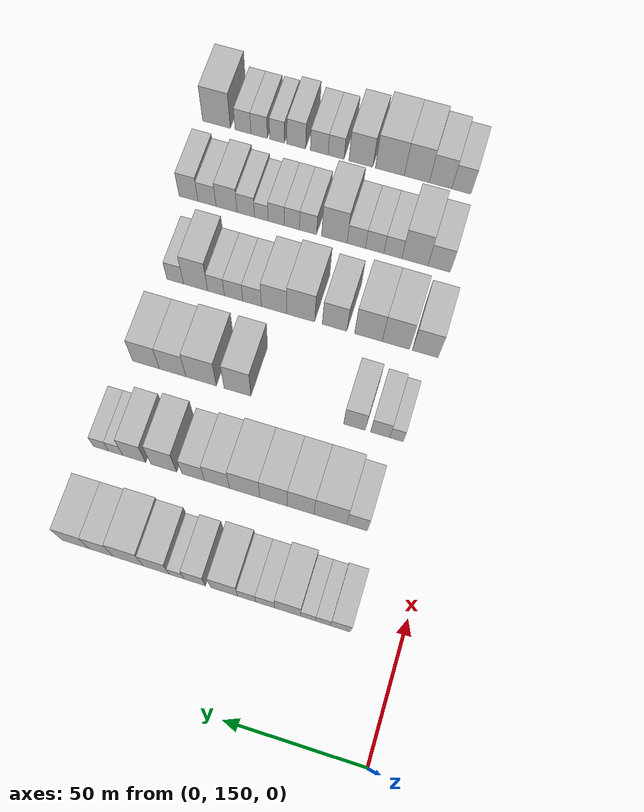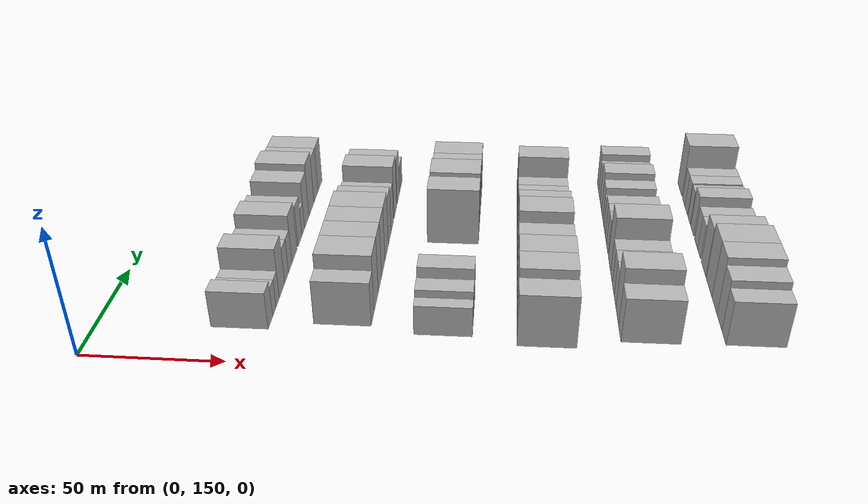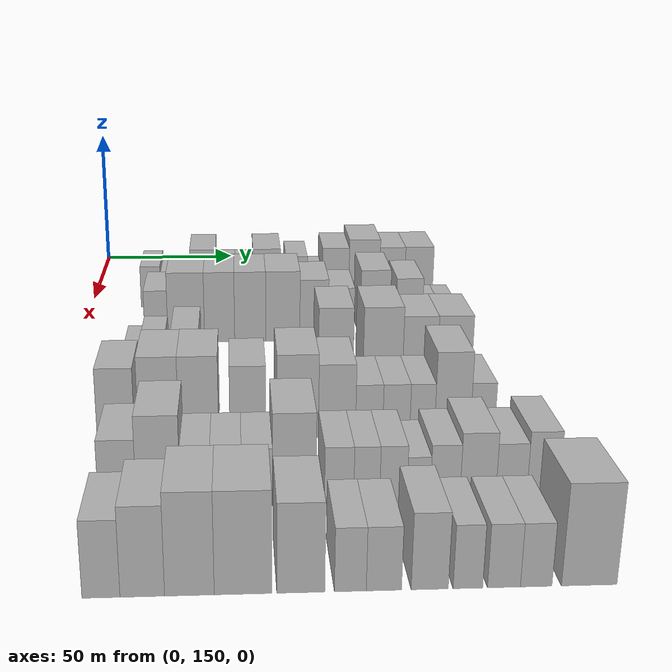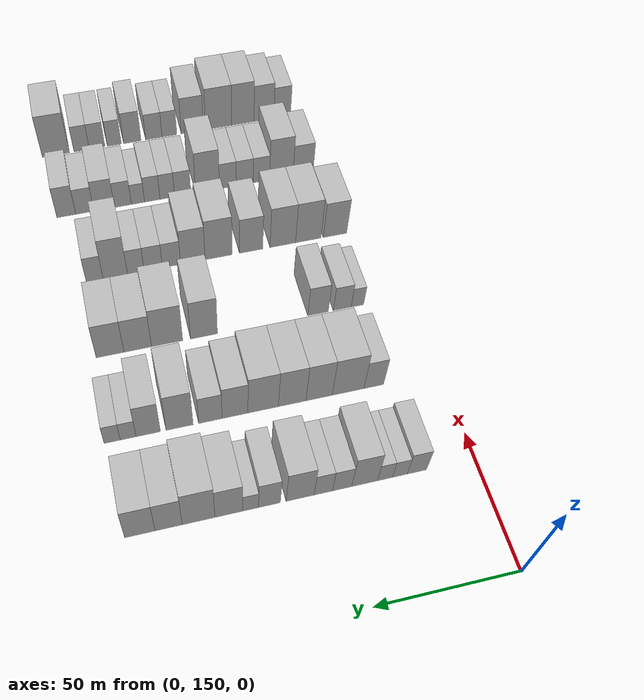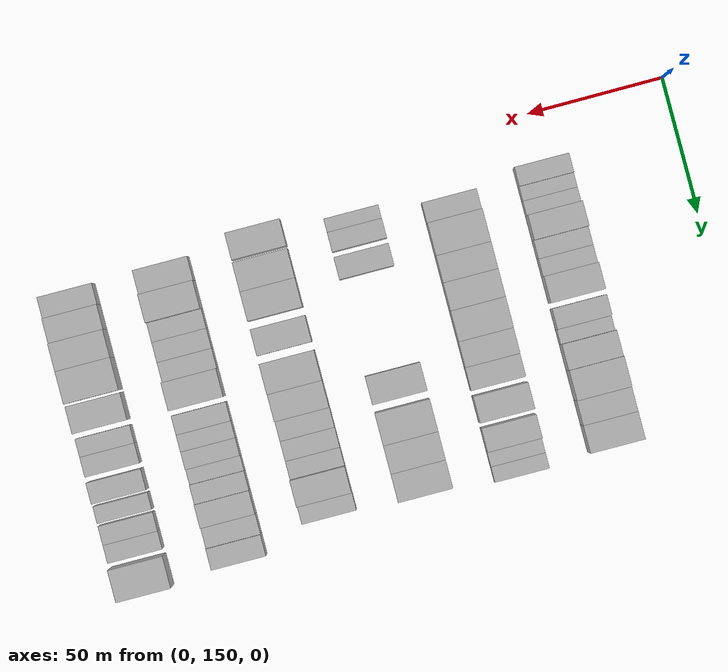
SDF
<sdf version="1.6">
 <world name="default">
  <model name="building_79">
   <static>1</static>
   <pose>50.0000 171.2696 0 0.000000 0.000000 0.000000</pose>
   <link name="link">
    <pose>0 0 7.50 0 0 0</pose>
    <collision name="collision"><geometry><box><size>20.0000 7.0186 15.0000</size></box></geometry></collision>
    <visual name="visual">
     <cast_shadows>0</cast_shadows>
     <geometry><box><size>20.0000 7.0186 15.0000</size></box></geometry>
     <material>
      <script>
       <uri>model://HANNAS_wall/materials/scripts</uri>
       <uri>model://HANNAS_wall/materials/textures</uri>
       <name>vrc/HANNAS_wall</name>
      </script>
     </material>
    </visual>
   </link>
  </model>
  <model name="building_80">
   <static>1</static>
   <pose>50.0000 177.4451 0 0.000000 0.000000 0.000000</pose>
   <link name="link">
    <pose>0 0 6.00 0 0 0</pose>
    <collision name="collision"><geometry><box><size>20.0000 5.3325 12.0000</size></box></geometry></collision>
    <visual name="visual">
     <cast_shadows>0</cast_shadows>
     <geometry><box><size>20.0000 5.3325 12.0000</size></box></geometry>
     <material>
      <script>
       <uri>model://HANNAS_wall/materials/scripts</uri>
       <uri>model://HANNAS_wall/materials/textures</uri>
       <name>vrc/HANNAS_wall</name>
      </script>
     </material>
    </visual>
   </link>
  </model>
  <model name="building_81">
   <static>1</static>
   <pose>50.0000 182.7792 0 0.000000 0.000000 0.000000</pose>
   <link name="link">
    <pose>0 0 6.00 0 0 0</pose>
    <collision name="collision"><geometry><box><size>20.0000 5.3355 12.0000</size></box></geometry></collision>
    <visual name="visual">
     <cast_shadows>0</cast_shadows>
     <geometry><box><size>20.0000 5.3355 12.0000</size></box></geometry>
     <material>
      <script>
       <uri>model://HANNAS_wall/materials/scripts</uri>
       <uri>model://HANNAS_wall/materials/textures</uri>
       <name>vrc/HANNAS_wall</name>
      </script>
     </material>
    </visual>
   </link>
  </model>
  <model name="building_82">
   <static>1</static>
   <pose>50.0000 190.0280 0 0.000000 0.000000 0.000000</pose>
   <link name="link">
    <pose>0 0 10.50 0 0 0</pose>
    <collision name="collision"><geometry><box><size>20.0000 9.1623 21.0000</size></box></geometry></collision>
    <visual name="visual">
     <cast_shadows>0</cast_shadows>
     <geometry><box><size>20.0000 9.1623 21.0000</size></box></geometry>
     <material>
      <script>
       <uri>model://HANNAS_wall/materials/scripts</uri>
       <uri>model://HANNAS_wall/materials/textures</uri>
       <name>vrc/HANNAS_wall</name>
      </script>
     </material>
    </visual>
   </link>
  </model>
  <model name="building_83">
   <static>1</static>
   <pose>50.0000 197.9950 0 0.000000 0.000000 0.000000</pose>
   <link name="link">
    <pose>0 0 7.50 0 0 0</pose>
    <collision name="collision"><geometry><box><size>20.0000 6.7716 15.0000</size></box></geometry></collision>
    <visual name="visual">
     <cast_shadows>0</cast_shadows>
     <geometry><box><size>20.0000 6.7716 15.0000</size></box></geometry>
     <material>
      <script>
       <uri>model://HANNAS_wall/materials/scripts</uri>
       <uri>model://HANNAS_wall/materials/textures</uri>
       <name>vrc/HANNAS_wall</name>
      </script>
     </material>
    </visual>
   </link>
  </model>
  <model name="building_84">
   <static>1</static>
   <pose>50.0000 204.6170 0 0.000000 0.000000 0.000000</pose>
   <link name="link">
    <pose>0 0 7.50 0 0 0</pose>
    <collision name="collision"><geometry><box><size>20.0000 6.4724 15.0000</size></box></geometry></collision>
    <visual name="visual">
     <cast_shadows>0</cast_shadows>
     <geometry><box><size>20.0000 6.4724 15.0000</size></box></geometry>
     <material>
      <script>
       <uri>model://HANNAS_wall/materials/scripts</uri>
       <uri>model://HANNAS_wall/materials/textures</uri>
       <name>vrc/HANNAS_wall</name>
      </script>
     </material>
    </visual>
   </link>
  </model>
  <model name="building_85">
   <static>1</static>
   <pose>50.0000 212.7337 0 0.000000 0.000000 0.000000</pose>
   <link name="link">
    <pose>0 0 10.50 0 0 0</pose>
    <collision name="collision"><geometry><box><size>20.0000 9.7609 21.0000</size></box></geometry></collision>
    <visual name="visual">
     <cast_shadows>0</cast_shadows>
     <geometry><box><size>20.0000 9.7609 21.0000</size></box></geometry>
     <material>
      <script>
       <uri>model://HANNAS_wall/materials/scripts</uri>
       <uri>model://HANNAS_wall/materials/textures</uri>
       <name>vrc/HANNAS_wall</name>
      </script>
     </material>
    </visual>
   </link>
  </model>
  <model name="building_86">
   <static>1</static>
   <pose>50.0000 223.4191 0 0.000000 0.000000 0.000000</pose>
   <link name="link">
    <pose>0 0 9.00 0 0 0</pose>
    <collision name="collision"><geometry><box><size>20.0000 7.6100 18.0000</size></box></geometry></collision>
    <visual name="visual">
     <cast_shadows>0</cast_shadows>
     <geometry><box><size>20.0000 7.6100 18.0000</size></box></geometry>
     <material>
      <script>
       <uri>model://HANNAS_wall/materials/scripts</uri>
       <uri>model://HANNAS_wall/materials/textures</uri>
       <name>vrc/HANNAS_wall</name>
      </script>
     </material>
    </visual>
   </link>
  </model>
  <model name="building_87">
   <static>1</static>
   <pose>50.0000 229.9350 0 0.000000 0.000000 0.000000</pose>
   <link name="link">
    <pose>0 0 6.00 0 0 0</pose>
    <collision name="collision"><geometry><box><size>20.0000 5.4217 12.0000</size></box></geometry></collision>
    <visual name="visual">
     <cast_shadows>0</cast_shadows>
     <geometry><box><size>20.0000 5.4217 12.0000</size></box></geometry>
     <material>
      <script>
       <uri>model://HANNAS_wall/materials/scripts</uri>
       <uri>model://HANNAS_wall/materials/textures</uri>
       <name>vrc/HANNAS_wall</name>
      </script>
     </material>
    </visual>
   </link>
  </model>
  <model name="building_88">
   <static>1</static>
   <pose>50.0000 237.3900 0 0.000000 0.000000 0.000000</pose>
   <link name="link">
    <pose>0 0 10.50 0 0 0</pose>
    <collision name="collision"><geometry><box><size>20.0000 9.4883 21.0000</size></box></geometry></collision>
    <visual name="visual">
     <cast_shadows>0</cast_shadows>
     <geometry><box><size>20.0000 9.4883 21.0000</size></box></geometry>
     <material>
      <script>
       <uri>model://HANNAS_wall/materials/scripts</uri>
       <uri>model://HANNAS_wall/materials/textures</uri>
       <name>vrc/HANNAS_wall</name>
      </script>
     </material>
    </visual>
   </link>
  </model>
  <model name="building_89">
   <static>1</static>
   <pose>50.0000 247.6659 0 0.000000 0.000000 0.000000</pose>
   <link name="link">
    <pose>0 0 12.00 0 0 0</pose>
    <collision name="collision"><geometry><box><size>20.0000 11.0635 24.0000</size></box></geometry></collision>
    <visual name="visual">
     <cast_shadows>0</cast_shadows>
     <geometry><box><size>20.0000 11.0635 24.0000</size></box></geometry>
     <material>
      <script>
       <uri>model://HANNAS_wall/materials/scripts</uri>
       <uri>model://HANNAS_wall/materials/textures</uri>
       <name>vrc/HANNAS_wall</name>
      </script>
     </material>
    </visual>
   </link>
  </model>
  <model name="building_90">
   <static>1</static>
   <pose>50.0000 257.7369 0 0.000000 0.000000 0.000000</pose>
   <link name="link">
    <pose>0 0 10.50 0 0 0</pose>
    <collision name="collision"><geometry><box><size>20.0000 9.0786 21.0000</size></box></geometry></collision>
    <visual name="visual">
     <cast_shadows>0</cast_shadows>
     <geometry><box><size>20.0000 9.0786 21.0000</size></box></geometry>
     <material>
      <script>
       <uri>model://HANNAS_wall/materials/scripts</uri>
       <uri>model://HANNAS_wall/materials/textures</uri>
       <name>vrc/HANNAS_wall</name>
      </script>
     </material>
    </visual>
   </link>
  </model>
  <model name="building_91">
   <static>1</static>
   <pose>50.0000 267.3488 0 0.000000 0.000000 0.000000</pose>
   <link name="link">
    <pose>0 0 10.50 0 0 0</pose>
    <collision name="collision"><geometry><box><size>20.0000 10.1451 21.0000</size></box></geometry></collision>
    <visual name="visual">
     <cast_shadows>0</cast_shadows>
     <geometry><box><size>20.0000 10.1451 21.0000</size></box></geometry>
     <material>
      <script>
       <uri>model://HANNAS_wall/materials/scripts</uri>
       <uri>model://HANNAS_wall/materials/textures</uri>
       <name>vrc/HANNAS_wall</name>
      </script>
     </material>
    </visual>
   </link>
  </model>
  <model name="building_213">
   <static>1</static>
   <pose>85.0000 175.4413 0 0.000000 0.000000 0.000000</pose>
   <link name="link">
    <pose>0 0 9.00 0 0 0</pose>
    <collision name="collision"><geometry><box><size>20.0000 7.5039 18.0000</size></box></geometry></collision>
    <visual name="visual">
     <cast_shadows>0</cast_shadows>
     <geometry><box><size>20.0000 7.5039 18.0000</size></box></geometry>
     <material>
      <script>
       <uri>model://HANNAS_wall/materials/scripts</uri>
       <uri>model://HANNAS_wall/materials/textures</uri>
       <name>vrc/HANNAS_wall</name>
      </script>
     </material>
    </visual>
   </link>
  </model>
  <model name="building_214">
   <static>1</static>
   <pose>85.0000 185.1753 0 0.000000 0.000000 0.000000</pose>
   <link name="link">
    <pose>0 0 12.00 0 0 0</pose>
    <collision name="collision"><geometry><box><size>20.0000 11.9642 24.0000</size></box></geometry></collision>
    <visual name="visual">
     <cast_shadows>0</cast_shadows>
     <geometry><box><size>20.0000 11.9642 24.0000</size></box></geometry>
     <material>
      <script>
       <uri>model://HANNAS_wall/materials/scripts</uri>
       <uri>model://HANNAS_wall/materials/textures</uri>
       <name>vrc/HANNAS_wall</name>
      </script>
     </material>
    </visual>
   </link>
  </model>
  <model name="building_215">
   <static>1</static>
   <pose>85.0000 196.0887 0 0.000000 0.000000 0.000000</pose>
   <link name="link">
    <pose>0 0 12.00 0 0 0</pose>
    <collision name="collision"><geometry><box><size>20.0000 9.8625 24.0000</size></box></geometry></collision>
    <visual name="visual">
     <cast_shadows>0</cast_shadows>
     <geometry><box><size>20.0000 9.8625 24.0000</size></box></geometry>
     <material>
      <script>
       <uri>model://HANNAS_wall/materials/scripts</uri>
       <uri>model://HANNAS_wall/materials/textures</uri>
       <name>vrc/HANNAS_wall</name>
      </script>
     </material>
    </visual>
   </link>
  </model>
  <model name="building_216">
   <static>1</static>
   <pose>85.0000 206.1308 0 0.000000 0.000000 0.000000</pose>
   <link name="link">
    <pose>0 0 12.00 0 0 0</pose>
    <collision name="collision"><geometry><box><size>20.0000 10.2217 24.0000</size></box></geometry></collision>
    <visual name="visual">
     <cast_shadows>0</cast_shadows>
     <geometry><box><size>20.0000 10.2217 24.0000</size></box></geometry>
     <material>
      <script>
       <uri>model://HANNAS_wall/materials/scripts</uri>
       <uri>model://HANNAS_wall/materials/textures</uri>
       <name>vrc/HANNAS_wall</name>
      </script>
     </material>
    </visual>
   </link>
  </model>
  <model name="building_217">
   <static>1</static>
   <pose>85.0000 216.8580 0 0.000000 0.000000 0.000000</pose>
   <link name="link">
    <pose>0 0 12.00 0 0 0</pose>
    <collision name="collision"><geometry><box><size>20.0000 11.2328 24.0000</size></box></geometry></collision>
    <visual name="visual">
     <cast_shadows>0</cast_shadows>
     <geometry><box><size>20.0000 11.2328 24.0000</size></box></geometry>
     <material>
      <script>
       <uri>model://HANNAS_wall/materials/scripts</uri>
       <uri>model://HANNAS_wall/materials/textures</uri>
       <name>vrc/HANNAS_wall</name>
      </script>
     </material>
    </visual>
   </link>
  </model>
  <model name="building_218">
   <static>1</static>
   <pose>85.0000 227.1788 0 0.000000 0.000000 0.000000</pose>
   <link name="link">
    <pose>0 0 10.50 0 0 0</pose>
    <collision name="collision"><geometry><box><size>20.0000 9.4088 21.0000</size></box></geometry></collision>
    <visual name="visual">
     <cast_shadows>0</cast_shadows>
     <geometry><box><size>20.0000 9.4088 21.0000</size></box></geometry>
     <material>
      <script>
       <uri>model://HANNAS_wall/materials/scripts</uri>
       <uri>model://HANNAS_wall/materials/textures</uri>
       <name>vrc/HANNAS_wall</name>
      </script>
     </material>
    </visual>
   </link>
  </model>
  <model name="building_219">
   <static>1</static>
   <pose>85.0000 236.1288 0 0.000000 0.000000 0.000000</pose>
   <link name="link">
    <pose>0 0 9.00 0 0 0</pose>
    <collision name="collision"><geometry><box><size>20.0000 8.4912 18.0000</size></box></geometry></collision>
    <visual name="visual">
     <cast_shadows>0</cast_shadows>
     <geometry><box><size>20.0000 8.4912 18.0000</size></box></geometry>
     <material>
      <script>
       <uri>model://HANNAS_wall/materials/scripts</uri>
       <uri>model://HANNAS_wall/materials/textures</uri>
       <name>vrc/HANNAS_wall</name>
      </script>
     </material>
    </visual>
   </link>
  </model>
  <model name="building_220">
   <static>1</static>
   <pose>85.0000 247.2409 0 0.000000 0.000000 0.000000</pose>
   <link name="link">
    <pose>0 0 12.00 0 0 0</pose>
    <collision name="collision"><geometry><box><size>20.0000 9.7332 24.0000</size></box></geometry></collision>
    <visual name="visual">
     <cast_shadows>0</cast_shadows>
     <geometry><box><size>20.0000 9.7332 24.0000</size></box></geometry>
     <material>
      <script>
       <uri>model://HANNAS_wall/materials/scripts</uri>
       <uri>model://HANNAS_wall/materials/textures</uri>
       <name>vrc/HANNAS_wall</name>
      </script>
     </material>
    </visual>
   </link>
  </model>
  <model name="building_221">
   <static>1</static>
   <pose>85.0000 258.4551 0 0.000000 0.000000 0.000000</pose>
   <link name="link">
    <pose>0 0 10.50 0 0 0</pose>
    <collision name="collision"><geometry><box><size>20.0000 8.6952 21.0000</size></box></geometry></collision>
    <visual name="visual">
     <cast_shadows>0</cast_shadows>
     <geometry><box><size>20.0000 8.6952 21.0000</size></box></geometry>
     <material>
      <script>
       <uri>model://HANNAS_wall/materials/scripts</uri>
       <uri>model://HANNAS_wall/materials/textures</uri>
       <name>vrc/HANNAS_wall</name>
      </script>
     </material>
    </visual>
   </link>
  </model>
  <model name="building_222">
   <static>1</static>
   <pose>85.0000 265.5883 0 0.000000 0.000000 0.000000</pose>
   <link name="link">
    <pose>0 0 6.00 0 0 0</pose>
    <collision name="collision"><geometry><box><size>20.0000 5.5711 12.0000</size></box></geometry></collision>
    <visual name="visual">
     <cast_shadows>0</cast_shadows>
     <geometry><box><size>20.0000 5.5711 12.0000</size></box></geometry>
     <material>
      <script>
       <uri>model://HANNAS_wall/materials/scripts</uri>
       <uri>model://HANNAS_wall/materials/textures</uri>
       <name>vrc/HANNAS_wall</name>
      </script>
     </material>
    </visual>
   </link>
  </model>
  <model name="building_223">
   <static>1</static>
   <pose>85.0000 271.2326 0 0.000000 0.000000 0.000000</pose>
   <link name="link">
    <pose>0 0 6.00 0 0 0</pose>
    <collision name="collision"><geometry><box><size>20.0000 5.7175 12.0000</size></box></geometry></collision>
    <visual name="visual">
     <cast_shadows>0</cast_shadows>
     <geometry><box><size>20.0000 5.7175 12.0000</size></box></geometry>
     <material>
      <script>
       <uri>model://HANNAS_wall/materials/scripts</uri>
       <uri>model://HANNAS_wall/materials/textures</uri>
       <name>vrc/HANNAS_wall</name>
      </script>
     </material>
    </visual>
   </link>
  </model>
  <model name="building_340">
   <static>1</static>
   <pose>120.0000 170.6771 0 0.000000 0.000000 0.000000</pose>
   <link name="link">
    <pose>0 0 6.00 0 0 0</pose>
    <collision name="collision"><geometry><box><size>20.0000 5.0451 12.0000</size></box></geometry></collision>
    <visual name="visual">
     <cast_shadows>0</cast_shadows>
     <geometry><box><size>20.0000 5.0451 12.0000</size></box></geometry>
     <material>
      <script>
       <uri>model://HANNAS_wall/materials/scripts</uri>
       <uri>model://HANNAS_wall/materials/textures</uri>
       <name>vrc/HANNAS_wall</name>
      </script>
     </material>
    </visual>
   </link>
  </model>
  <model name="building_341">
   <static>1</static>
   <pose>120.0000 176.7974 0 0.000000 0.000000 0.000000</pose>
   <link name="link">
    <pose>0 0 7.50 0 0 0</pose>
    <collision name="collision"><geometry><box><size>20.0000 7.1956 15.0000</size></box></geometry></collision>
    <visual name="visual">
     <cast_shadows>0</cast_shadows>
     <geometry><box><size>20.0000 7.1956 15.0000</size></box></geometry>
     <material>
      <script>
       <uri>model://HANNAS_wall/materials/scripts</uri>
       <uri>model://HANNAS_wall/materials/textures</uri>
       <name>vrc/HANNAS_wall</name>
      </script>
     </material>
    </visual>
   </link>
  </model>
  <model name="building_342">
   <static>1</static>
   <pose>120.0000 186.4738 0 0.000000 0.000000 0.000000</pose>
   <link name="link">
    <pose>0 0 9.00 0 0 0</pose>
    <collision name="collision"><geometry><box><size>20.0000 8.1570 18.0000</size></box></geometry></collision>
    <visual name="visual">
     <cast_shadows>0</cast_shadows>
     <geometry><box><size>20.0000 8.1570 18.0000</size></box></geometry>
     <material>
      <script>
       <uri>model://HANNAS_wall/materials/scripts</uri>
       <uri>model://HANNAS_wall/materials/textures</uri>
       <name>vrc/HANNAS_wall</name>
      </script>
     </material>
    </visual>
   </link>
  </model>
  <model name="building_343">
   <static>1</static>
   <pose>120.0000 231.0684 0 0.000000 0.000000 0.000000</pose>
   <link name="link">
    <pose>0 0 12.00 0 0 0</pose>
    <collision name="collision"><geometry><box><size>20.0000 10.3441 24.0000</size></box></geometry></collision>
    <visual name="visual">
     <cast_shadows>0</cast_shadows>
     <geometry><box><size>20.0000 10.3441 24.0000</size></box></geometry>
     <material>
      <script>
       <uri>model://HANNAS_wall/materials/scripts</uri>
       <uri>model://HANNAS_wall/materials/textures</uri>
       <name>vrc/HANNAS_wall</name>
      </script>
     </material>
    </visual>
   </link>
  </model>
  <model name="building_344">
   <static>1</static>
   <pose>120.0000 245.1687 0 0.000000 0.000000 0.000000</pose>
   <link name="link">
    <pose>0 0 12.00 0 0 0</pose>
    <collision name="collision"><geometry><box><size>20.0000 11.8566 24.0000</size></box></geometry></collision>
    <visual name="visual">
     <cast_shadows>0</cast_shadows>
     <geometry><box><size>20.0000 11.8566 24.0000</size></box></geometry>
     <material>
      <script>
       <uri>model://HANNAS_wall/materials/scripts</uri>
       <uri>model://HANNAS_wall/materials/textures</uri>
       <name>vrc/HANNAS_wall</name>
      </script>
     </material>
    </visual>
   </link>
  </model>
  <model name="building_345">
   <static>1</static>
   <pose>120.0000 256.3021 0 0.000000 0.000000 0.000000</pose>
   <link name="link">
    <pose>0 0 10.50 0 0 0</pose>
    <collision name="collision"><geometry><box><size>20.0000 10.4101 21.0000</size></box></geometry></collision>
    <visual name="visual">
     <cast_shadows>0</cast_shadows>
     <geometry><box><size>20.0000 10.4101 21.0000</size></box></geometry>
     <material>
      <script>
       <uri>model://HANNAS_wall/materials/scripts</uri>
       <uri>model://HANNAS_wall/materials/textures</uri>
       <name>vrc/HANNAS_wall</name>
      </script>
     </material>
    </visual>
   </link>
  </model>
  <model name="building_346">
   <static>1</static>
   <pose>120.0000 266.7120 0 0.000000 0.000000 0.000000</pose>
   <link name="link">
    <pose>0 0 10.50 0 0 0</pose>
    <collision name="collision"><geometry><box><size>20.0000 10.4098 21.0000</size></box></geometry></collision>
    <visual name="visual">
     <cast_shadows>0</cast_shadows>
     <geometry><box><size>20.0000 10.4098 21.0000</size></box></geometry>
     <material>
      <script>
       <uri>model://HANNAS_wall/materials/scripts</uri>
       <uri>model://HANNAS_wall/materials/textures</uri>
       <name>vrc/HANNAS_wall</name>
      </script>
     </material>
    </visual>
   </link>
  </model>
  <model name="building_462">
   <static>1</static>
   <pose>155.0000 169.2779 0 0.000000 0.000000 0.000000</pose>
   <link name="link">
    <pose>0 0 10.50 0 0 0</pose>
    <collision name="collision"><geometry><box><size>20.0000 9.8955 21.0000</size></box></geometry></collision>
    <visual name="visual">
     <cast_shadows>0</cast_shadows>
     <geometry><box><size>20.0000 9.8955 21.0000</size></box></geometry>
     <material>
      <script>
       <uri>model://HANNAS_wall/materials/scripts</uri>
       <uri>model://HANNAS_wall/materials/textures</uri>
       <name>vrc/HANNAS_wall</name>
      </script>
     </material>
    </visual>
   </link>
  </model>
  <model name="building_463">
   <static>1</static>
   <pose>155.0000 180.5474 0 0.000000 0.000000 0.000000</pose>
   <link name="link">
    <pose>0 0 12.00 0 0 0</pose>
    <collision name="collision"><geometry><box><size>20.0000 10.6436 24.0000</size></box></geometry></collision>
    <visual name="visual">
     <cast_shadows>0</cast_shadows>
     <geometry><box><size>20.0000 10.6436 24.0000</size></box></geometry>
     <material>
      <script>
       <uri>model://HANNAS_wall/materials/scripts</uri>
       <uri>model://HANNAS_wall/materials/textures</uri>
       <name>vrc/HANNAS_wall</name>
      </script>
     </material>
    </visual>
   </link>
  </model>
  <model name="building_464">
   <static>1</static>
   <pose>155.0000 191.2137 0 0.000000 0.000000 0.000000</pose>
   <link name="link">
    <pose>0 0 12.00 0 0 0</pose>
    <collision name="collision"><geometry><box><size>20.0000 10.6891 24.0000</size></box></geometry></collision>
    <visual name="visual">
     <cast_shadows>0</cast_shadows>
     <geometry><box><size>20.0000 10.6891 24.0000</size></box></geometry>
     <material>
      <script>
       <uri>model://HANNAS_wall/materials/scripts</uri>
       <uri>model://HANNAS_wall/materials/textures</uri>
       <name>vrc/HANNAS_wall</name>
      </script>
     </material>
    </visual>
   </link>
  </model>
  <model name="building_465">
   <static>1</static>
   <pose>155.0000 204.3678 0 0.000000 0.000000 0.000000</pose>
   <link name="link">
    <pose>0 0 10.50 0 0 0</pose>
    <collision name="collision"><geometry><box><size>20.0000 9.6191 21.0000</size></box></geometry></collision>
    <visual name="visual">
     <cast_shadows>0</cast_shadows>
     <geometry><box><size>20.0000 9.6191 21.0000</size></box></geometry>
     <material>
      <script>
       <uri>model://HANNAS_wall/materials/scripts</uri>
       <uri>model://HANNAS_wall/materials/textures</uri>
       <name>vrc/HANNAS_wall</name>
      </script>
     </material>
    </visual>
   </link>
  </model>
  <model name="building_466">
   <static>1</static>
   <pose>155.0000 217.7143 0 0.000000 0.000000 0.000000</pose>
   <link name="link">
    <pose>0 0 12.00 0 0 0</pose>
    <collision name="collision"><geometry><box><size>20.0000 11.0740 24.0000</size></box></geometry></collision>
    <visual name="visual">
     <cast_shadows>0</cast_shadows>
     <geometry><box><size>20.0000 11.0740 24.0000</size></box></geometry>
     <material>
      <script>
       <uri>model://HANNAS_wall/materials/scripts</uri>
       <uri>model://HANNAS_wall/materials/textures</uri>
       <name>vrc/HANNAS_wall</name>
      </script>
     </material>
    </visual>
   </link>
  </model>
  <model name="building_467">
   <static>1</static>
   <pose>155.0000 228.2185 0 0.000000 0.000000 0.000000</pose>
   <link name="link">
    <pose>0 0 10.50 0 0 0</pose>
    <collision name="collision"><geometry><box><size>20.0000 9.9343 21.0000</size></box></geometry></collision>
    <visual name="visual">
     <cast_shadows>0</cast_shadows>
     <geometry><box><size>20.0000 9.9343 21.0000</size></box></geometry>
     <material>
      <script>
       <uri>model://HANNAS_wall/materials/scripts</uri>
       <uri>model://HANNAS_wall/materials/textures</uri>
       <name>vrc/HANNAS_wall</name>
      </script>
     </material>
    </visual>
   </link>
  </model>
  <model name="building_468">
   <static>1</static>
   <pose>155.0000 236.8538 0 0.000000 0.000000 0.000000</pose>
   <link name="link">
    <pose>0 0 7.50 0 0 0</pose>
    <collision name="collision"><geometry><box><size>20.0000 7.3363 15.0000</size></box></geometry></collision>
    <visual name="visual">
     <cast_shadows>0</cast_shadows>
     <geometry><box><size>20.0000 7.3363 15.0000</size></box></geometry>
     <material>
      <script>
       <uri>model://HANNAS_wall/materials/scripts</uri>
       <uri>model://HANNAS_wall/materials/textures</uri>
       <name>vrc/HANNAS_wall</name>
      </script>
     </material>
    </visual>
   </link>
  </model>
  <model name="building_469">
   <static>1</static>
   <pose>155.0000 244.1714 0 0.000000 0.000000 0.000000</pose>
   <link name="link">
    <pose>0 0 7.50 0 0 0</pose>
    <collision name="collision"><geometry><box><size>20.0000 7.2989 15.0000</size></box></geometry></collision>
    <visual name="visual">
     <cast_shadows>0</cast_shadows>
     <geometry><box><size>20.0000 7.2989 15.0000</size></box></geometry>
     <material>
      <script>
       <uri>model://HANNAS_wall/materials/scripts</uri>
       <uri>model://HANNAS_wall/materials/textures</uri>
       <name>vrc/HANNAS_wall</name>
      </script>
     </material>
    </visual>
   </link>
  </model>
  <model name="building_470">
   <static>1</static>
   <pose>155.0000 251.1694 0 0.000000 0.000000 0.000000</pose>
   <link name="link">
    <pose>0 0 7.50 0 0 0</pose>
    <collision name="collision"><geometry><box><size>20.0000 6.6970 15.0000</size></box></geometry></collision>
    <visual name="visual">
     <cast_shadows>0</cast_shadows>
     <geometry><box><size>20.0000 6.6970 15.0000</size></box></geometry>
     <material>
      <script>
       <uri>model://HANNAS_wall/materials/scripts</uri>
       <uri>model://HANNAS_wall/materials/textures</uri>
       <name>vrc/HANNAS_wall</name>
      </script>
     </material>
    </visual>
   </link>
  </model>
  <model name="building_471">
   <static>1</static>
   <pose>155.0000 259.3707 0 0.000000 0.000000 0.000000</pose>
   <link name="link">
    <pose>0 0 12.00 0 0 0</pose>
    <collision name="collision"><geometry><box><size>20.0000 9.7055 24.0000</size></box></geometry></collision>
    <visual name="visual">
     <cast_shadows>0</cast_shadows>
     <geometry><box><size>20.0000 9.7055 24.0000</size></box></geometry>
     <material>
      <script>
       <uri>model://HANNAS_wall/materials/scripts</uri>
       <uri>model://HANNAS_wall/materials/textures</uri>
       <name>vrc/HANNAS_wall</name>
      </script>
     </material>
    </visual>
   </link>
  </model>
  <model name="building_472">
   <static>1</static>
   <pose>155.0000 267.5530 0 0.000000 0.000000 0.000000</pose>
   <link name="link">
    <pose>0 0 7.50 0 0 0</pose>
    <collision name="collision"><geometry><box><size>20.0000 6.6593 15.0000</size></box></geometry></collision>
    <visual name="visual">
     <cast_shadows>0</cast_shadows>
     <geometry><box><size>20.0000 6.6593 15.0000</size></box></geometry>
     <material>
      <script>
       <uri>model://HANNAS_wall/materials/scripts</uri>
       <uri>model://HANNAS_wall/materials/textures</uri>
       <name>vrc/HANNAS_wall</name>
      </script>
     </material>
    </visual>
   </link>
  </model>
  <model name="building_589">
   <static>1</static>
   <pose>190.0000 173.1218 0 0.000000 0.000000 0.000000</pose>
   <link name="link">
    <pose>0 0 9.00 0 0 0</pose>
    <collision name="collision"><geometry><box><size>20.0000 8.8609 18.0000</size></box></geometry></collision>
    <visual name="visual">
     <cast_shadows>0</cast_shadows>
     <geometry><box><size>20.0000 8.8609 18.0000</size></box></geometry>
     <material>
      <script>
       <uri>model://HANNAS_wall/materials/scripts</uri>
       <uri>model://HANNAS_wall/materials/textures</uri>
       <name>vrc/HANNAS_wall</name>
      </script>
     </material>
    </visual>
   </link>
  </model>
  <model name="building_590">
   <static>1</static>
   <pose>190.0000 182.7255 0 0.000000 0.000000 0.000000</pose>
   <link name="link">
    <pose>0 0 12.00 0 0 0</pose>
    <collision name="collision"><geometry><box><size>20.0000 10.3466 24.0000</size></box></geometry></collision>
    <visual name="visual">
     <cast_shadows>0</cast_shadows>
     <geometry><box><size>20.0000 10.3466 24.0000</size></box></geometry>
     <material>
      <script>
       <uri>model://HANNAS_wall/materials/scripts</uri>
       <uri>model://HANNAS_wall/materials/textures</uri>
       <name>vrc/HANNAS_wall</name>
      </script>
     </material>
    </visual>
   </link>
  </model>
  <model name="building_591">
   <static>1</static>
   <pose>190.0000 191.4546 0 0.000000 0.000000 0.000000</pose>
   <link name="link">
    <pose>0 0 7.50 0 0 0</pose>
    <collision name="collision"><geometry><box><size>20.0000 7.1115 15.0000</size></box></geometry></collision>
    <visual name="visual">
     <cast_shadows>0</cast_shadows>
     <geometry><box><size>20.0000 7.1115 15.0000</size></box></geometry>
     <material>
      <script>
       <uri>model://HANNAS_wall/materials/scripts</uri>
       <uri>model://HANNAS_wall/materials/textures</uri>
       <name>vrc/HANNAS_wall</name>
      </script>
     </material>
    </visual>
   </link>
  </model>
  <model name="building_592">
   <static>1</static>
   <pose>190.0000 198.6875 0 0.000000 0.000000 0.000000</pose>
   <link name="link">
    <pose>0 0 7.50 0 0 0</pose>
    <collision name="collision"><geometry><box><size>20.0000 7.3545 15.0000</size></box></geometry></collision>
    <visual name="visual">
     <cast_shadows>0</cast_shadows>
     <geometry><box><size>20.0000 7.3545 15.0000</size></box></geometry>
     <material>
      <script>
       <uri>model://HANNAS_wall/materials/scripts</uri>
       <uri>model://HANNAS_wall/materials/textures</uri>
       <name>vrc/HANNAS_wall</name>
      </script>
     </material>
    </visual>
   </link>
  </model>
  <model name="building_593">
   <static>1</static>
   <pose>190.0000 206.0282 0 0.000000 0.000000 0.000000</pose>
   <link name="link">
    <pose>0 0 7.50 0 0 0</pose>
    <collision name="collision"><geometry><box><size>20.0000 7.3270 15.0000</size></box></geometry></collision>
    <visual name="visual">
     <cast_shadows>0</cast_shadows>
     <geometry><box><size>20.0000 7.3270 15.0000</size></box></geometry>
     <material>
      <script>
       <uri>model://HANNAS_wall/materials/scripts</uri>
       <uri>model://HANNAS_wall/materials/textures</uri>
       <name>vrc/HANNAS_wall</name>
      </script>
     </material>
    </visual>
   </link>
  </model>
  <model name="building_594">
   <static>1</static>
   <pose>190.0000 214.8346 0 0.000000 0.000000 0.000000</pose>
   <link name="link">
    <pose>0 0 12.00 0 0 0</pose>
    <collision name="collision"><geometry><box><size>20.0000 10.2857 24.0000</size></box></geometry></collision>
    <visual name="visual">
     <cast_shadows>0</cast_shadows>
     <geometry><box><size>20.0000 10.2857 24.0000</size></box></geometry>
     <material>
      <script>
       <uri>model://HANNAS_wall/materials/scripts</uri>
       <uri>model://HANNAS_wall/materials/textures</uri>
       <name>vrc/HANNAS_wall</name>
      </script>
     </material>
    </visual>
   </link>
  </model>
  <model name="building_595">
   <static>1</static>
   <pose>190.0000 225.4565 0 0.000000 0.000000 0.000000</pose>
   <link name="link">
    <pose>0 0 7.50 0 0 0</pose>
    <collision name="collision"><geometry><box><size>20.0000 6.9581 15.0000</size></box></geometry></collision>
    <visual name="visual">
     <cast_shadows>0</cast_shadows>
     <geometry><box><size>20.0000 6.9581 15.0000</size></box></geometry>
     <material>
      <script>
       <uri>model://HANNAS_wall/materials/scripts</uri>
       <uri>model://HANNAS_wall/materials/textures</uri>
       <name>vrc/HANNAS_wall</name>
      </script>
     </material>
    </visual>
   </link>
  </model>
  <model name="building_596">
   <static>1</static>
   <pose>190.0000 232.0343 0 0.000000 0.000000 0.000000</pose>
   <link name="link">
    <pose>0 0 7.50 0 0 0</pose>
    <collision name="collision"><geometry><box><size>20.0000 6.1973 15.0000</size></box></geometry></collision>
    <visual name="visual">
     <cast_shadows>0</cast_shadows>
     <geometry><box><size>20.0000 6.1973 15.0000</size></box></geometry>
     <material>
      <script>
       <uri>model://HANNAS_wall/materials/scripts</uri>
       <uri>model://HANNAS_wall/materials/textures</uri>
       <name>vrc/HANNAS_wall</name>
      </script>
     </material>
    </visual>
   </link>
  </model>
  <model name="building_597">
   <static>1</static>
   <pose>190.0000 238.3915 0 0.000000 0.000000 0.000000</pose>
   <link name="link">
    <pose>0 0 7.50 0 0 0</pose>
    <collision name="collision"><geometry><box><size>20.0000 6.5172 15.0000</size></box></geometry></collision>
    <visual name="visual">
     <cast_shadows>0</cast_shadows>
     <geometry><box><size>20.0000 6.5172 15.0000</size></box></geometry>
     <material>
      <script>
       <uri>model://HANNAS_wall/materials/scripts</uri>
       <uri>model://HANNAS_wall/materials/textures</uri>
       <name>vrc/HANNAS_wall</name>
      </script>
     </material>
    </visual>
   </link>
  </model>
  <model name="building_598">
   <static>1</static>
   <pose>190.0000 244.4418 0 0.000000 0.000000 0.000000</pose>
   <link name="link">
    <pose>0 0 6.00 0 0 0</pose>
    <collision name="collision"><geometry><box><size>20.0000 5.5833 12.0000</size></box></geometry></collision>
    <visual name="visual">
     <cast_shadows>0</cast_shadows>
     <geometry><box><size>20.0000 5.5833 12.0000</size></box></geometry>
     <material>
      <script>
       <uri>model://HANNAS_wall/materials/scripts</uri>
       <uri>model://HANNAS_wall/materials/textures</uri>
       <name>vrc/HANNAS_wall</name>
      </script>
     </material>
    </visual>
   </link>
  </model>
  <model name="building_599">
   <static>1</static>
   <pose>190.0000 250.8004 0 0.000000 0.000000 0.000000</pose>
   <link name="link">
    <pose>0 0 7.50 0 0 0</pose>
    <collision name="collision"><geometry><box><size>20.0000 7.1339 15.0000</size></box></geometry></collision>
    <visual name="visual">
     <cast_shadows>0</cast_shadows>
     <geometry><box><size>20.0000 7.1339 15.0000</size></box></geometry>
     <material>
      <script>
       <uri>model://HANNAS_wall/materials/scripts</uri>
       <uri>model://HANNAS_wall/materials/textures</uri>
       <name>vrc/HANNAS_wall</name>
      </script>
     </material>
    </visual>
   </link>
  </model>
  <model name="building_600">
   <static>1</static>
   <pose>190.0000 258.6695 0 0.000000 0.000000 0.000000</pose>
   <link name="link">
    <pose>0 0 9.00 0 0 0</pose>
    <collision name="collision"><geometry><box><size>20.0000 8.6044 18.0000</size></box></geometry></collision>
    <visual name="visual">
     <cast_shadows>0</cast_shadows>
     <geometry><box><size>20.0000 8.6044 18.0000</size></box></geometry>
     <material>
      <script>
       <uri>model://HANNAS_wall/materials/scripts</uri>
       <uri>model://HANNAS_wall/materials/textures</uri>
       <name>vrc/HANNAS_wall</name>
      </script>
     </material>
    </visual>
   </link>
  </model>
  <model name="building_601">
   <static>1</static>
   <pose>190.0000 266.7140 0 0.000000 0.000000 0.000000</pose>
   <link name="link">
    <pose>0 0 7.50 0 0 0</pose>
    <collision name="collision"><geometry><box><size>20.0000 7.4845 15.0000</size></box></geometry></collision>
    <visual name="visual">
     <cast_shadows>0</cast_shadows>
     <geometry><box><size>20.0000 7.4845 15.0000</size></box></geometry>
     <material>
      <script>
       <uri>model://HANNAS_wall/materials/scripts</uri>
       <uri>model://HANNAS_wall/materials/textures</uri>
       <name>vrc/HANNAS_wall</name>
      </script>
     </material>
    </visual>
   </link>
  </model>
  <model name="building_602">
   <static>1</static>
   <pose>190.0000 274.3591 0 0.000000 0.000000 0.000000</pose>
   <link name="link">
    <pose>0 0 9.00 0 0 0</pose>
    <collision name="collision"><geometry><box><size>20.0000 7.8057 18.0000</size></box></geometry></collision>
    <visual name="visual">
     <cast_shadows>0</cast_shadows>
     <geometry><box><size>20.0000 7.8057 18.0000</size></box></geometry>
     <material>
      <script>
       <uri>model://HANNAS_wall/materials/scripts</uri>
       <uri>model://HANNAS_wall/materials/textures</uri>
       <name>vrc/HANNAS_wall</name>
      </script>
     </material>
    </visual>
   </link>
  </model>
  <model name="building_705">
   <static>1</static>
   <pose>225.0000 173.1902 0 0.000000 0.000000 0.000000</pose>
   <link name="link">
    <pose>0 0 9.00 0 0 0</pose>
    <collision name="collision"><geometry><box><size>20.0000 7.7608 18.0000</size></box></geometry></collision>
    <visual name="visual">
     <cast_shadows>0</cast_shadows>
     <geometry><box><size>20.0000 7.7608 18.0000</size></box></geometry>
     <material>
      <script>
       <uri>model://HANNAS_wall/materials/scripts</uri>
       <uri>model://HANNAS_wall/materials/textures</uri>
       <name>vrc/HANNAS_wall</name>
      </script>
     </material>
    </visual>
   </link>
  </model>
  <model name="building_706">
   <static>1</static>
   <pose>225.0000 181.6315 0 0.000000 0.000000 0.000000</pose>
   <link name="link">
    <pose>0 0 10.50 0 0 0</pose>
    <collision name="collision"><geometry><box><size>20.0000 9.1217 21.0000</size></box></geometry></collision>
    <visual name="visual">
     <cast_shadows>0</cast_shadows>
     <geometry><box><size>20.0000 9.1217 21.0000</size></box></geometry>
     <material>
      <script>
       <uri>model://HANNAS_wall/materials/scripts</uri>
       <uri>model://HANNAS_wall/materials/textures</uri>
       <name>vrc/HANNAS_wall</name>
      </script>
     </material>
    </visual>
   </link>
  </model>
  <model name="building_707">
   <static>1</static>
   <pose>225.0000 191.2891 0 0.000000 0.000000 0.000000</pose>
   <link name="link">
    <pose>0 0 12.00 0 0 0</pose>
    <collision name="collision"><geometry><box><size>20.0000 10.1936 24.0000</size></box></geometry></collision>
    <visual name="visual">
     <cast_shadows>0</cast_shadows>
     <geometry><box><size>20.0000 10.1936 24.0000</size></box></geometry>
     <material>
      <script>
       <uri>model://HANNAS_wall/materials/scripts</uri>
       <uri>model://HANNAS_wall/materials/textures</uri>
       <name>vrc/HANNAS_wall</name>
      </script>
     </material>
    </visual>
   </link>
  </model>
  <model name="building_708">
   <static>1</static>
   <pose>225.0000 202.3316 0 0.000000 0.000000 0.000000</pose>
   <link name="link">
    <pose>0 0 12.00 0 0 0</pose>
    <collision name="collision"><geometry><box><size>20.0000 11.8913 24.0000</size></box></geometry></collision>
    <visual name="visual">
     <cast_shadows>0</cast_shadows>
     <geometry><box><size>20.0000 11.8913 24.0000</size></box></geometry>
     <material>
      <script>
       <uri>model://HANNAS_wall/materials/scripts</uri>
       <uri>model://HANNAS_wall/materials/textures</uri>
       <name>vrc/HANNAS_wall</name>
      </script>
     </material>
    </visual>
   </link>
  </model>
  <model name="building_709">
   <static>1</static>
   <pose>225.0000 214.2407 0 0.000000 0.000000 0.000000</pose>
   <link name="link">
    <pose>0 0 10.50 0 0 0</pose>
    <collision name="collision"><geometry><box><size>20.0000 9.9269 21.0000</size></box></geometry></collision>
    <visual name="visual">
     <cast_shadows>0</cast_shadows>
     <geometry><box><size>20.0000 9.9269 21.0000</size></box></geometry>
     <material>
      <script>
       <uri>model://HANNAS_wall/materials/scripts</uri>
       <uri>model://HANNAS_wall/materials/textures</uri>
       <name>vrc/HANNAS_wall</name>
      </script>
     </material>
    </visual>
   </link>
  </model>
  <model name="building_710">
   <static>1</static>
   <pose>225.0000 224.5101 0 0.000000 0.000000 0.000000</pose>
   <link name="link">
    <pose>0 0 7.50 0 0 0</pose>
    <collision name="collision"><geometry><box><size>20.0000 6.6119 15.0000</size></box></geometry></collision>
    <visual name="visual">
     <cast_shadows>0</cast_shadows>
     <geometry><box><size>20.0000 6.6119 15.0000</size></box></geometry>
     <material>
      <script>
       <uri>model://HANNAS_wall/materials/scripts</uri>
       <uri>model://HANNAS_wall/materials/textures</uri>
       <name>vrc/HANNAS_wall</name>
      </script>
     </material>
    </visual>
   </link>
  </model>
  <model name="building_711">
   <static>1</static>
   <pose>225.0000 231.4916 0 0.000000 0.000000 0.000000</pose>
   <link name="link">
    <pose>0 0 7.50 0 0 0</pose>
    <collision name="collision"><geometry><box><size>20.0000 7.3511 15.0000</size></box></geometry></collision>
    <visual name="visual">
     <cast_shadows>0</cast_shadows>
     <geometry><box><size>20.0000 7.3511 15.0000</size></box></geometry>
     <material>
      <script>
       <uri>model://HANNAS_wall/materials/scripts</uri>
       <uri>model://HANNAS_wall/materials/textures</uri>
       <name>vrc/HANNAS_wall</name>
      </script>
     </material>
    </visual>
   </link>
  </model>
  <model name="building_712">
   <static>1</static>
   <pose>225.0000 241.0540 0 0.000000 0.000000 0.000000</pose>
   <link name="link">
    <pose>0 0 9.00 0 0 0</pose>
    <collision name="collision"><geometry><box><size>20.0000 7.7737 18.0000</size></box></geometry></collision>
    <visual name="visual">
     <cast_shadows>0</cast_shadows>
     <geometry><box><size>20.0000 7.7737 18.0000</size></box></geometry>
     <material>
      <script>
       <uri>model://HANNAS_wall/materials/scripts</uri>
       <uri>model://HANNAS_wall/materials/textures</uri>
       <name>vrc/HANNAS_wall</name>
      </script>
     </material>
    </visual>
   </link>
  </model>
  <model name="building_713">
   <static>1</static>
   <pose>225.0000 249.0449 0 0.000000 0.000000 0.000000</pose>
   <link name="link">
    <pose>0 0 7.50 0 0 0</pose>
    <collision name="collision"><geometry><box><size>20.0000 6.2081 15.0000</size></box></geometry></collision>
    <visual name="visual">
     <cast_shadows>0</cast_shadows>
     <geometry><box><size>20.0000 6.2081 15.0000</size></box></geometry>
     <material>
      <script>
       <uri>model://HANNAS_wall/materials/scripts</uri>
       <uri>model://HANNAS_wall/materials/textures</uri>
       <name>vrc/HANNAS_wall</name>
      </script>
     </material>
    </visual>
   </link>
  </model>
  <model name="building_714">
   <static>1</static>
   <pose>225.0000 256.6054 0 0.000000 0.000000 0.000000</pose>
   <link name="link">
    <pose>0 0 7.50 0 0 0</pose>
    <collision name="collision"><geometry><box><size>20.0000 6.9130 15.0000</size></box></geometry></collision>
    <visual name="visual">
     <cast_shadows>0</cast_shadows>
     <geometry><box><size>20.0000 6.9130 15.0000</size></box></geometry>
     <material>
      <script>
       <uri>model://HANNAS_wall/materials/scripts</uri>
       <uri>model://HANNAS_wall/materials/textures</uri>
       <name>vrc/HANNAS_wall</name>
      </script>
     </material>
    </visual>
   </link>
  </model>
  <model name="building_715">
   <static>1</static>
   <pose>225.0000 263.3940 0 0.000000 0.000000 0.000000</pose>
   <link name="link">
    <pose>0 0 7.50 0 0 0</pose>
    <collision name="collision"><geometry><box><size>20.0000 6.6640 15.0000</size></box></geometry></collision>
    <visual name="visual">
     <cast_shadows>0</cast_shadows>
     <geometry><box><size>20.0000 6.6640 15.0000</size></box></geometry>
     <material>
      <script>
       <uri>model://HANNAS_wall/materials/scripts</uri>
       <uri>model://HANNAS_wall/materials/textures</uri>
       <name>vrc/HANNAS_wall</name>
      </script>
     </material>
    </visual>
   </link>
  </model>
  <model name="building_716">
   <static>1</static>
   <pose>225.0000 274.5956 0 0.000000 0.000000 0.000000</pose>
   <link name="link">
    <pose>0 0 12.00 0 0 0</pose>
    <collision name="collision"><geometry><box><size>20.0000 11.7393 24.0000</size></box></geometry></collision>
    <visual name="visual">
     <cast_shadows>0</cast_shadows>
     <geometry><box><size>20.0000 11.7393 24.0000</size></box></geometry>
     <material>
      <script>
       <uri>model://HANNAS_wall/materials/scripts</uri>
       <uri>model://HANNAS_wall/materials/textures</uri>
       <name>vrc/HANNAS_wall</name>
      </script>
     </material>
    </visual>
   </link>
  </model>
 </world>
</sdf>
